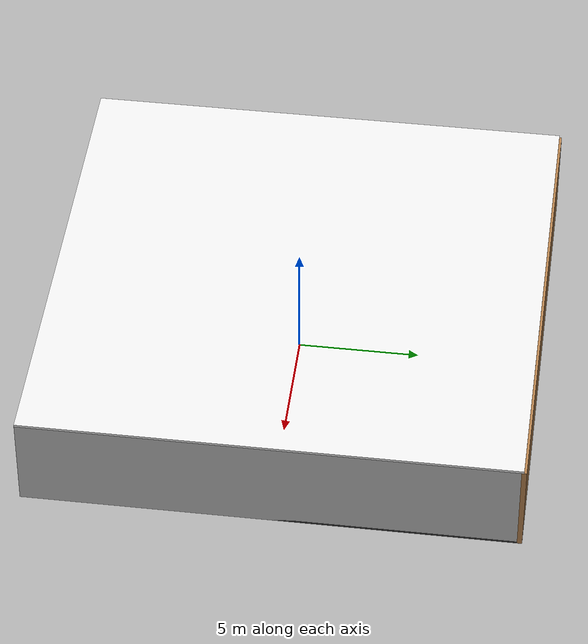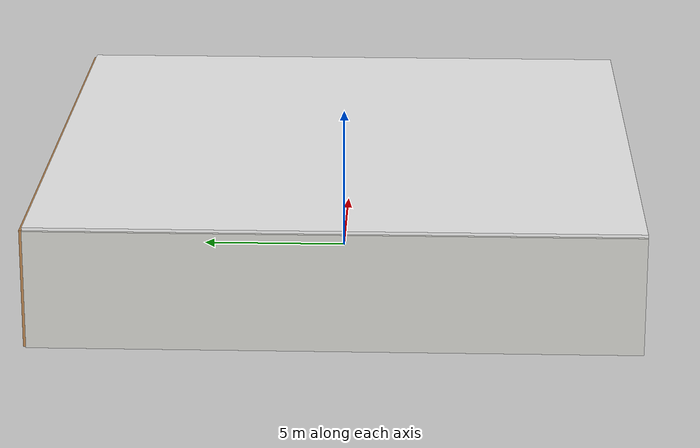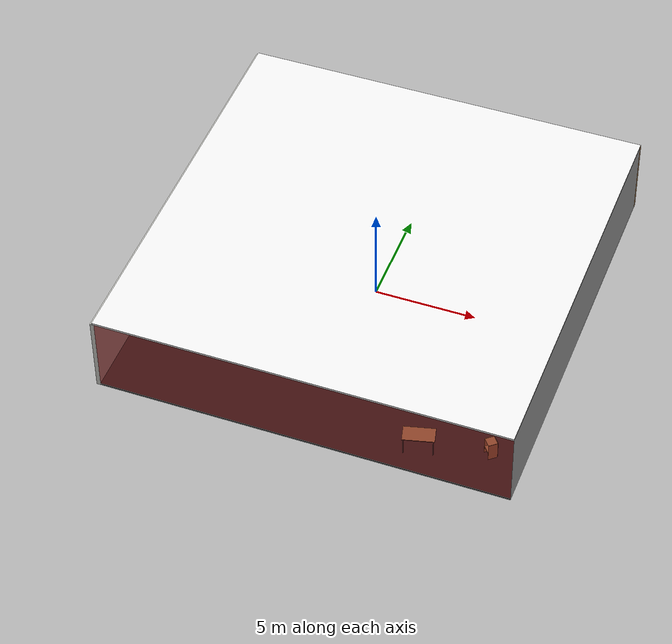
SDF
<sdf version="1.4">
 <world name="default">
  <physics type="ode">
   <max_step_size>0.001</max_step_size>
   <real_time_factor>1</real_time_factor>
   <real_time_update_rate>1000</real_time_update_rate>
   <gravity>0 0 -9.8</gravity>
  </physics>
  <scene><ambient>0.4 0.4 0.4 1</ambient><background>0.7 0.7 0.7 1</background><shadows>1</shadows></scene>
  <model name="Surrounding">
   <static>1</static>
   <link name="Ceiling">
    <collision name="Ceiling_Collision"><geometry><box><size>20 20 0.1</size></box></geometry></collision>
    <visual name="Ceiling_Visual">
     <geometry><box><size>20 20 0.1</size></box></geometry>
     <material>
      <script><uri>file://media/materials/scripts/gazebo.material</uri><name>Gazebo/WhiteGlow</name></script>
     </material>
    </visual>
    <pose>0 0 4.05 0 0 0</pose>
   </link>
   <link name="Wall_South">
    <collision name="Wall_South_Collision">
     <geometry><box><size>20 0 4</size></box></geometry>
     <pose>0 0 2 0 -0 0</pose>
    </collision>
    <visual name="Wall_South_Visual">
     <pose>0 0 2 0 -0 0</pose>
     <geometry><box><size>20 0 4</size></box></geometry>
     <material>
      <script><uri>file://media/materials/scripts/gazebo.material</uri><name>Gazebo/RedTransparent</name></script>
     </material>
    </visual>
    <velocity_decay><linear>0</linear><angular>0</angular></velocity_decay>
    <pose>0 -10 0 0 -0 0</pose>
   </link>
   <link name="Wall_East">
    <collision name="Wall_21_Collision">
     <geometry><box><size>20 0 4</size></box></geometry>
     <pose>0 0 2 0 -0 0</pose>
    </collision>
    <visual name="Wall_21_Visual">
     <pose>0 0 2 0 -0 0</pose>
     <geometry><box><size>20 0 4</size></box></geometry>
     <material>
      <script><uri>file://media/materials/scripts/gazebo.material</uri><name>Gazebo/LightOff</name></script>
     </material>
    </visual>
    <velocity_decay><linear>0</linear><angular>0</angular></velocity_decay>
    <pose>10 0 0 0 -0 1.5708</pose>
   </link>
   <link name="Wall_North">
    <collision name="Wall_22_Collision">
     <geometry><box><size>20 0.2 4</size></box></geometry>
     <pose>0 0 2 0 -0 0</pose>
    </collision>
    <visual name="Wall_22_Visual">
     <pose>0 0 2 0 -0 0</pose>
     <geometry><box><size>20 0.2 4</size></box></geometry>
     <material>
      <script><uri>file://media/materials/scripts/gazebo.material</uri><name>Gazebo/WoodFloor</name></script>
     </material>
    </visual>
    <velocity_decay><linear>0</linear><angular>0</angular></velocity_decay>
    <pose>0 10 0 0 -0 0</pose>
   </link>
   <link name="Wall_West">
    <collision name="Wall_23_Collision">
     <geometry><box><size>20 0.2 4</size></box></geometry>
     <pose>0 0 2 0 -0 0</pose>
    </collision>
    <visual name="Wall_23_Visual">
     <pose>0 0 2 0 -0 0</pose>
     <geometry><box><size>20 0.2 4</size></box></geometry>
     <material>
      <script><uri>file://media/materials/scripts/gazebo.material</uri><name>Gazebo/CeilingTiled</name></script>
     </material>
    </visual>
    <velocity_decay><linear>0</linear><angular>0</angular></velocity_decay>
    <pose>-10 0 0 0 0 -1.5708</pose>
   </link>
   <link name="Ground_link">
    <collision name="collision">
     <pose>0 0 .05 0 -0 0</pose>
     <geometry><box><size>20 20 0.1</size></box></geometry>
    </collision>
    <visual name="visual">
     <pose>0 0 .05 0 -0 0</pose>
     <geometry><box><size>20 20 0.1</size></box></geometry>
     <material>
      <script><uri>file://media/materials/scripts/gazebo.material</uri><name>Gazebo/FlatBlack</name></script>
     </material>
    </visual>
   </link>
   <static>1</static>
  </model>
  <spherical_coordinates>
   <surface_model>EARTH_WGS84</surface_model>
   <latitude_deg>0</latitude_deg>
   <longitude_deg>0</longitude_deg>
   <elevation>0</elevation>
   <heading_deg>0</heading_deg>
  </spherical_coordinates>
  <light name="lightball_0" type="diffuse">
   <diffuse>0.8 0.8 0.8 1</diffuse>
   <specular>0.2 0.2 0.2 1</specular>
   <attenuation>
    <range>100</range>
    <constant>0.7</constant>
    <linear>0.01</linear>
    <quadratic>0.001</quadratic>
   </attenuation>
   <direction>-0.5 0.1 -0.9</direction>
   <pose>8.05720486986 5.53872173524 3.26712869931 0 0 0</pose>
  </light>
  <light name="lightball_1" type="diffuse">
   <diffuse>0.8 0.8 0.8 1</diffuse>
   <specular>0.2 0.2 0.2 1</specular>
   <attenuation>
    <range>100</range>
    <constant>0.7</constant>
    <linear>0.01</linear>
    <quadratic>0.001</quadratic>
   </attenuation>
   <direction>-0.5 0.1 -0.9</direction>
   <pose>-0.0125725169984 -4.06371222089 3.72355476479 0 0 0</pose>
  </light>
  <light name="lightball_2" type="diffuse">
   <diffuse>0.8 0.8 0.8 1</diffuse>
   <specular>0.2 0.2 0.2 1</specular>
   <attenuation>
    <range>100</range>
    <constant>0.7</constant>
    <linear>0.01</linear>
    <quadratic>0.001</quadratic>
   </attenuation>
   <direction>-0.5 0.1 -0.9</direction>
   <pose>8.64628408944 -5.64484145537 2.05463073905 0 0 0</pose>
  </light>
  <include><uri>model://cabinet</uri><pose>-1.13230325963 -5.66740466079 0 0 0 3.07077176686</pose></include>
  <include><uri>model://table</uri><pose>-2.54655690603 1.64545770402 0 0 0 0.512256521533</pose></include>
  <include><uri>model://cabinet</uri><pose>0.860583721518 -5.31255213633 0 0 0 1.48523202575</pose></include>
  <include><uri>model://cabinet</uri><pose>2.29412267704 -2.30868154434 0 0 0 2.84071364498</pose></include>
  <include>
   <uri>model://robocup_3Dsim_goal</uri>
   <pose>2.44650839118 8.50856428385 0 0 0 1.98598327761</pose>
  </include>
  <include><uri>model://table</uri><pose>5.19283635509 -8.59809699531 0 0 0 0.247220982315</pose></include>
  <include><uri>model://cabinet</uri><pose>3.44408159555 -3.40407512917 0 0 0 1.47889884699</pose></include>
  <include><uri>model://cabinet</uri><pose>8.37298365126 -7.87576974245 0 0 0 0.690284976288</pose></include>
  <include>
   <uri>model://robocup_3Dsim_goal</uri>
   <pose>7.68490166546 -2.59052385047 0 0 0 2.28968498418</pose>
  </include>
  <include>
   <uri>model://construction_cone</uri>
   <pose>8.36148611528 2.45581903608 0 0 0 0.575767030738</pose>
  </include>
 </world>
</sdf>

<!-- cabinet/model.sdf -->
<sdf version="1.5">
  <model name="cabinet">
    <static>true</static>
    <link name="cabinet_bottom_plate">
      <inertial>
        <pose>0 0 -1 0 0 0</pose>
        <inertia>
          <ixx>2.050000</ixx>
          <ixy>0</ixy>
          <ixz>0</ixz>
          <iyy>2.050000</iyy>
          <iyz>0</iyz>
          <izz>2.050000</izz>
        </inertia>
        <mass>25.000000</mass>
      </inertial>
      <collision name="cabinet_bottom_plate_geom">
        <pose>0 0 0.010000 0 0 0</pose>
        <geometry>
          <box>
            <size>0.450000 0.450000 0.020000</size>
          </box>
        </geometry>
      </collision>
      <visual name="cabinet_bottom_plate_geom_visual">
        <pose>0 0 0.010000 0 0 0</pose>
        <geometry>
          <box>
            <size>0.450000 0.450000 0.020000</size>
          </box>
        </geometry>
        <material>
          <script>
            <uri>model://media/materials/scripts/gazebo.material</uri>
            <name>Gazebo/Wood</name>
          </script>
        </material>
      </visual>
      <collision name="cabinet_bottom_plate_geom_cabinet_back_plate">
        <pose>0.235000 0 0.510000 0 0 0</pose>
        <geometry>
          <box>
            <size>0.020000 0.450000 1.020000</size>
          </box>
        </geometry>
      </collision>
      <visual name="cabinet_bottom_plate_geom_cabinet_back_plate_visual">
        <pose>0.235000 0 0.510000 0 0 0</pose>
        <geometry>
          <box>
            <size>0.020000 0.450000 1.020000</size>
          </box>
        </geometry>
        <material>
          <script>
            <uri>model://media/materials/scripts/gazebo.material</uri>
            <name>Gazebo/Wood</name>
          </script>
        </material>
      </visual>
      <collision name="cabinet_bottom_plate_geom_cabinet_left_plate">
        <pose>0 0.235000 0.510000 0 0 0</pose>
        <geometry>
          <box>
            <size>0.450000 0.020000 1.020000</size>
          </box>
        </geometry>
      </collision>
      <visual name="cabinet_bottom_plate_geom_cabinet_left_plate_visual">
        <pose>0 0.235000 0.510000 0 0 0</pose>
        <geometry>
          <box>
            <size>0.450000 0.020000 1.020000</size>
          </box>
        </geometry>
        <material>
          <script>
            <uri>model://media/materials/scripts/gazebo.material</uri>
            <name>Gazebo/Wood</name>
          </script>
        </material>
      </visual>
      <collision name="cabinet_bottom_plate_geom_cabinet_middle_plate">
        <pose>0 0 0.510000 0 0 0</pose>
        <geometry>
          <box>
            <size>0.450000 0.450000 0.020000</size>
          </box>
        </geometry>
      </collision>
      <visual name="cabinet_bottom_plate_geom_cabinet_middle_plate_visual">
        <pose>0 0 0.510000 0 0 0</pose>
        <geometry>
          <box>
            <size>0.450000 0.450000 0.020000</size>
          </box>
        </geometry>
        <material>
          <script>
            <uri>model://media/materials/scripts/gazebo.material</uri>
            <name>Gazebo/Wood</name>
          </script>
        </material>
      </visual>
      <collision name="cabinet_bottom_plate_geom_cabinet_right_plate">
        <pose>0 -0.235000 0.510000 0 0 0</pose>
        <geometry>
          <box>
            <size>0.450000 0.020000 1.020000</size>
          </box>
        </geometry>
      </collision>
      <visual name="cabinet_bottom_plate_geom_cabinet_right_plate_visual">
        <pose>0 -0.235000 0.510000 0 0 0</pose>
        <geometry>
          <box>
            <size>0.450000 0.020000 1.020000</size>
          </box>
        </geometry>
        <material>
          <script>
            <uri>model://media/materials/scripts/gazebo.material</uri>
            <name>Gazebo/Wood</name>
          </script>
        </material>
      </visual>
      <collision name="cabinet_bottom_plate_geom_cabinet_top_plate">
        <pose>0 0 1.010000 0 0 0</pose>
        <geometry>
          <box>
            <size>0.450000 0.450000 0.020000</size>
          </box>
        </geometry>
      </collision>
      <visual name="cabinet_bottom_plate_geom_cabinet_top_plate_visual">
        <pose>0 0 1.010000 0 0 0</pose>
        <geometry>
          <box>
            <size>0.450000 0.450000 0.020000</size>
          </box>
        </geometry>
        <material>
          <script>
            <uri>model://media/materials/scripts/gazebo.material</uri>
            <name>Gazebo/Wood</name>
          </script>
        </material>
      </visual>
    </link>
  </model>
</sdf>

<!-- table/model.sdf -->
<sdf version="1.5">
  <model name="table">
    <static>true</static>
    <link name="link">
      <collision name="surface">
        <pose>0 0 1.0 0 0 0</pose>
        <geometry>
          <box>
            <size>1.5 0.8 0.03</size>
          </box>
        </geometry>
        <surface>
          <friction>
            <ode>
              <mu>0.6</mu>
              <mu2>0.6</mu2>
            </ode>
          </friction>
        </surface>
      </collision>
      <visual name="visual1">
        <pose>0 0 1.0 0 0 0</pose>
        <geometry>
          <box>
            <size>1.5 0.8 0.03</size>
          </box>
        </geometry>
        <material>
          <script>
            <uri>model://media/materials/scripts/gazebo.material</uri>
            <name>Gazebo/Wood</name>
          </script>
        </material>
      </visual>
      <collision name="front_left_leg">
        <pose>0.68 0.38 0.5 0 0 0</pose>
        <geometry>
          <cylinder>
            <radius>0.02</radius>
            <length>1.0</length>
          </cylinder>
        </geometry>
      </collision>
      <visual name="front_left_leg">
        <pose>0.68 0.38 0.5 0 0 0</pose>
        <geometry>
          <cylinder>
            <radius>0.02</radius>
            <length>1.0</length>
          </cylinder>
        </geometry>
        <material>
          <script>
            <uri>model://media/materials/scripts/gazebo.material</uri>
            <name>Gazebo/Grey</name>
          </script>
        </material>
      </visual>
      <collision name="front_right_leg">
        <pose>0.68 -0.38 0.5 0 0 0</pose>
        <geometry>
          <cylinder>
            <radius>0.02</radius>
            <length>1.0</length>
          </cylinder>
        </geometry>
      </collision>
      <visual name="front_right_leg">
        <pose>0.68 -0.38 0.5 0 0 0</pose>
        <geometry>
          <cylinder>
            <radius>0.02</radius>
            <length>1.0</length>
          </cylinder>
        </geometry>
        <material>
          <script>
            <uri>model://media/materials/scripts/gazebo.material</uri>
            <name>Gazebo/Grey</name>
          </script>
        </material>
      </visual>
      <collision name="back_right_leg">
        <pose>-0.68 -0.38 0.5 0 0 0</pose>
        <geometry>
          <cylinder>
            <radius>0.02</radius>
            <length>1.0</length>
          </cylinder>
        </geometry>
      </collision>
      <visual name="back_right_leg">
        <pose>-0.68 -0.38 0.5 0 0 0</pose>
        <geometry>
          <cylinder>
            <radius>0.02</radius>
            <length>1.0</length>
          </cylinder>
        </geometry>
        <material>
          <script>
            <uri>model://media/materials/scripts/gazebo.material</uri>
            <name>Gazebo/Grey</name>
          </script>
        </material>
      </visual>
      <collision name="back_left_leg">
        <pose>-0.68 0.38 0.5 0 0 0</pose>
        <geometry>
          <cylinder>
            <radius>0.02</radius>
            <length>1.0</length>
          </cylinder>
        </geometry>
      </collision>
      <visual name="back_left_leg">
        <pose>-0.68 0.38 0.5 0 0 0</pose>
        <geometry>
          <cylinder>
            <radius>0.02</radius>
            <length>1.0</length>
          </cylinder>
        </geometry>
        <material>
          <script>
            <uri>model://media/materials/scripts/gazebo.material</uri>
            <name>Gazebo/Grey</name>
          </script>
        </material>
      </visual>
    </link>
  </model>
</sdf>

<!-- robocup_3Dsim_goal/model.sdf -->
<sdf version="1.5">
  <model name="robocup_3d_goal">
    <static>true</static>
    <link name="left_post">
      <pose>0 1.05 0.45 0 0 0</pose>
      <collision name="collision">
        <geometry>
          <cylinder>
            <radius>0.05</radius>
            <length>0.9</length>
          </cylinder>
        </geometry>
      </collision>
      <visual name="visual">
        <geometry>
          <cylinder>
            <radius>0.05</radius>
            <length>0.9</length>
          </cylinder>
        </geometry>
        <material>
          <script>
            <uri>file://media/materials/scripts/gazebo.material</uri>
            <name>Gazebo/ZincYellow</name>
          </script>
        </material>
      </visual>
    </link>
    <link name="left_support_horiz_lower">
      <pose>0.30 1.05 0.01 0 0 0</pose>
      <collision name="collision">
        <geometry>
          <box>
            <size>0.50 0.02 0.02</size>
          </box>
        </geometry>
      </collision>
      <visual name="visual">
        <geometry>
          <box>
            <size>0.50 0.02 0.02</size>
          </box>
        </geometry>
        <material>
          <script>
            <uri>file://media/materials/scripts/gazebo.material</uri>
            <name>Gazebo/White</name>
          </script>
        </material>
      </visual>
    </link>
    <link name="left_support_horiz_upper">
      <pose>0.30 1.05 0.79 0 0 0</pose>
      <collision name="collision">
        <geometry>
          <box>
            <size>0.50 0.02 0.02</size>
          </box>
        </geometry>
      </collision>
      <visual name="visual">
        <geometry>
          <box>
            <size>0.50 0.02 0.02</size>
          </box>
        </geometry>
        <material>
          <script>
            <uri>file://media/materials/scripts/gazebo.material</uri>
            <name>Gazebo/White</name>
          </script>
        </material>
      </visual>
    </link>
    <link name="left_support_vertical">
      <pose>0.56 1.05 0.4 0 1.5708 0</pose>
      <collision name="collision">
        <geometry>
          <box>
            <size>0.80 0.02 0.02</size>
          </box>
        </geometry>
      </collision>
      <visual name="visual">
        <geometry>
          <box>
            <size>0.80 0.02 0.02</size>
          </box>
        </geometry>
        <material>
          <script>
            <uri>file://media/materials/scripts/gazebo.material</uri>
            <name>Gazebo/White</name>
          </script>
        </material>
      </visual>
    </link>
    <link name="right_support_horiz_lower">
      <pose>0.30 -1.05 0.01 0 0 0</pose>
      <collision name="collision">
        <geometry>
          <box>
            <size>0.50 0.02 0.02</size>
          </box>
        </geometry>
      </collision>
      <visual name="visual">
        <geometry>
          <box>
            <size>0.50 0.02 0.02</size>
          </box>
        </geometry>
        <material>
          <script>
            <uri>file://media/materials/scripts/gazebo.material</uri>
            <name>Gazebo/White</name>
          </script>
        </material>
      </visual>
    </link>
    <link name="right_support_horiz_upper">
      <pose>0.30 -1.05 0.79 0 0 0</pose>
      <collision name="collision">
        <geometry>
          <box>
            <size>0.50 0.02 0.02</size>
          </box>
        </geometry>
      </collision>
      <visual name="visual">
        <geometry>
          <box>
            <size>0.50 0.02 0.02</size>
          </box>
        </geometry>
        <material>
          <script>
            <uri>file://media/materials/scripts/gazebo.material</uri>
            <name>Gazebo/White</name>
          </script>
        </material>
      </visual>
    </link>
    <link name="right_support_vertical">
      <pose>0.56 -1.05 0.4 0 1.5708 0</pose>
      <collision name="collision">
        <geometry>
          <box>
            <size>0.80 0.02 0.02</size>
          </box>
        </geometry>
      </collision>
      <visual name="visual">
        <geometry>
          <box>
            <size>0.80 0.02 0.02</size>
          </box>
        </geometry>
        <material>
          <script>
            <uri>file://media/materials/scripts/gazebo.material</uri>
            <name>Gazebo/White</name>
          </script>
        </material>
      </visual>
    </link>
    <link name="center_support_horiz_lower">
      <pose>0.56 0 0.01 0 1.5708 0</pose>
      <collision name="collision">
        <geometry>
          <box>
            <size>0.02 2.08 0.02</size>
          </box>
        </geometry>
      </collision>
      <visual name="visual">
        <geometry>
          <box>
            <size>0.02 2.08 0.02</size>
          </box>
        </geometry>
        <material>
          <script>
            <uri>file://media/materials/scripts/gazebo.material</uri>
            <name>Gazebo/White</name>
          </script>
        </material>
      </visual>
    </link>
    <link name="center_support_horiz_upper">
      <pose>0.56 0 0.79 0 1.5708 0</pose>
      <collision name="collision">
        <geometry>
          <box>
            <size>0.02 2.08 0.02</size>
          </box>
        </geometry>
      </collision>
      <visual name="visual">
        <geometry>
          <box>
            <size>0.02 2.08 0.02</size>
          </box>
        </geometry>
        <material>
          <script>
            <uri>file://media/materials/scripts/gazebo.material</uri>
            <name>Gazebo/White</name>
          </script>
        </material>
      </visual>
    </link>
    <link name="right_post">
      <pose>0 -1.05 0.45 0 0 0</pose>
      <collision name="collision">
        <geometry>
          <cylinder>
            <radius>0.05</radius>
            <length>0.9</length>
          </cylinder>
        </geometry>
      </collision>
      <visual name="visual">
        <geometry>
          <cylinder>
            <radius>0.05</radius>
            <length>0.9</length>
          </cylinder>
        </geometry>
        <material>
          <script>
            <uri>file://media/materials/scripts/gazebo.material</uri>
            <name>Gazebo/ZincYellow</name>
          </script>
        </material>
      </visual>
    </link>
    <link name="crossbar">
      <pose>0 0 0.85 1.57 1.57 0</pose>
      <collision name="collision">
        <geometry>
          <cylinder>
            <radius>0.05</radius>
            <length>2.0</length>
          </cylinder>
        </geometry>
      </collision>
      <visual name="visual">
        <geometry>
          <cylinder>
            <radius>0.05</radius>
            <length>2.0</length>
          </cylinder>
        </geometry>
        <material>
          <script>
            <uri>file://media/materials/scripts/gazebo.material</uri>
            <name>Gazebo/ZincYellow</name>
          </script>
        </material>
      </visual>
    </link>
    <link name="center_net">
      <pose>0.56 0 0.40 0 0 0</pose>
      <collision name="collision">
        <geometry>
          <box>
            <size>0.01 2.1 0.80</size>
          </box>
        </geometry>
      </collision>
      <visual name="visual">
        <geometry>
          <box>
            <size>0.01 2.1 0.80</size>
          </box>
        </geometry>
        <material>
          <script>
            <uri>model://../model_source/models/robocup09_spl_field/materials/scripts/</uri>
            <uri>model://../model_source/models/robocup09_spl_field/materials/textures/</uri>
            <name>RoboCup/Net</name>
          </script>
        </material>
      </visual>
    </link>
    <link name="left_net">
      <pose>0.30 1.05 0.40 0 0 0</pose>
      <collision name="collision">
        <geometry>
          <box>
            <size>0.50 0.01 0.76</size>
          </box>
        </geometry>
      </collision>
      <visual name="visual">
        <geometry>
          <box>
            <size>0.50 0.01 0.76</size>
          </box>
        </geometry>
        <material>
          <script>
            <uri>model://../model_source/models/robocup09_spl_field/materials/scripts/</uri>
            <uri>model://../model_source/models/robocup09_spl_field/materials/textures/</uri>
            <name>RoboCup/Net</name>
          </script>
        </material>
      </visual>
    </link>
    <link name="right_net">
      <pose>0.30 -1.05 0.40 0 0 0</pose>
      <collision name="collision">
        <geometry>
          <box>
            <size>0.50 0.01 0.76</size>
          </box>
        </geometry>
      </collision>
      <visual name="visual">
        <geometry>
          <box>
            <size>0.50 0.01 0.76</size>
          </box>
        </geometry>
        <material>
          <script>
            <uri>model://../model_source/models/robocup09_spl_field/materials/scripts/</uri>
            <uri>model://../model_source/models/robocup09_spl_field/materials/textures/</uri>
            <name>RoboCup/Net</name>
          </script>
        </material>
      </visual>
    </link>
  </model>
</sdf>

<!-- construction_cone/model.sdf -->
<sdf version="1.5">
  <model name="Construction Cone">
    <link name="link">
      <collision name="collision">
        <geometry>
          <mesh>
            <scale>10 10 10</scale>
            <uri>file://isr-testbed/construction_cone/meshes/construction_cone.dae</uri>
          </mesh>
        </geometry>
      </collision>
      <visual name="visual">
        <geometry>
          <mesh>
            <scale>10 10 10</scale>
            <uri>file://isr-testbed/construction_cone/meshes/construction_cone.dae</uri>
          </mesh>
        </geometry>
      </visual>
    </link>
  </model>
</sdf>
